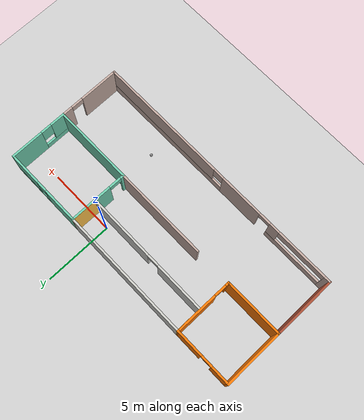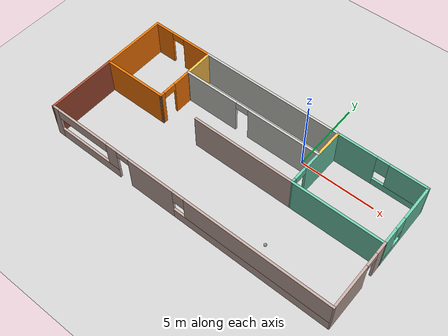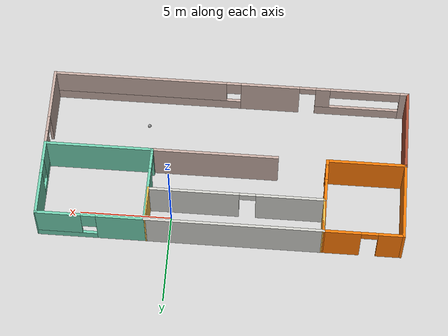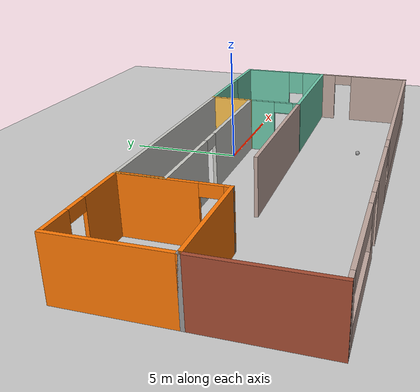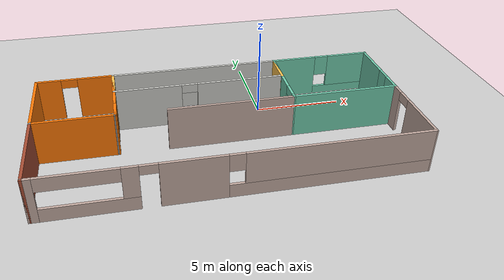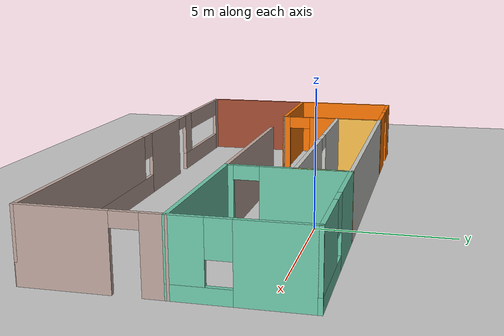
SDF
<sdf version="1.7">
 <world name="default">
  <plugin name="Project1Plugin" filename="libProject1Plugin.so"/>
  <light name="sun" type="directional">
   <pose>0 0 10 0 -0 0</pose>
   <diffuse>0.8 0.8 0.8 1</diffuse>
   <specular>0.2 0.2 0.2 1</specular>
   <attenuation>
    <range>1000</range>
    <constant>0.9</constant>
    <linear>0.01</linear>
    <quadratic>0.001</quadratic>
   </attenuation>
   <direction>-0.5 0.1 -0.9</direction>
   <spot><inner_angle>0</inner_angle><outer_angle>0</outer_angle><falloff>0</falloff></spot>
  </light>
  <model name="ground_plane">
   <static>1</static>
   <link name="link">
    <collision name="collision">
     <geometry><plane><normal>0 0 1</normal><size>100 100</size></plane></geometry>
     <surface>
      <contact><collide_bitmask>65535</collide_bitmask></contact>
      <friction><ode><mu>100</mu><mu2>50</mu2></ode></friction>
     </surface>
    </collision>
    <visual name="visual">
     <cast_shadows>0</cast_shadows>
     <geometry><plane><normal>0 0 1</normal><size>100 100</size></plane></geometry>
     <material>
      <script><uri>file://media/materials/scripts/gazebo.material</uri><name>Gazebo/Grey</name></script>
     </material>
    </visual>
   </link>
  </model>
  <gravity>0 0 -9.8</gravity>
  <magnetic_field>6e-06 2.3e-05 -4.2e-05</magnetic_field>
  <atmosphere type="adiabatic"/>
  <physics type="ode">
   <max_step_size>0.001</max_step_size>
   <real_time_factor>1</real_time_factor>
   <real_time_update_rate>1000</real_time_update_rate>
  </physics>
  <scene><ambient>0.4 0.4 0.4 1</ambient><background>0.7 0.7 0.7 1</background><shadows>1</shadows></scene>
  <spherical_coordinates>
   <surface_model>EARTH_WGS84</surface_model>
   <latitude_deg>0</latitude_deg>
   <longitude_deg>0</longitude_deg>
   <elevation>0</elevation>
   <heading_deg>0</heading_deg>
  </spherical_coordinates>
  <model name="House">
   <pose>-2.75299 -2.99954 0 0 -0 0</pose>
   <link name="Wall_0">
    <pose>-0.000507 -4.41346 0 0 -0 0</pose>
    <visual name="Wall_0_Visual_0">
     <pose>-9.69615 0 1.25 0 -0 0</pose>
     <geometry><box><size>0.510706 0.15 2.5</size></box></geometry>
     <material>
      <script><uri>file://media/materials/scripts/gazebo.material</uri><name>Gazebo/Grey</name></script>
      <ambient>0.760784 0.662745 0.627451 1</ambient>
     </material>
     <meta><layer>0</layer></meta>
    </visual>
    <collision name="Wall_0_Collision_0">
     <geometry><box><size>0.510706 0.15 2.5</size></box></geometry>
     <pose>-9.69615 0 1.25 0 -0 0</pose>
    </collision>
    <visual name="Wall_0_Visual_1">
     <pose>-2.21069 0 1.25 0 -0 0</pose>
     <geometry><box><size>3.28211 0.15 2.5</size></box></geometry>
     <material>
      <script><uri>file://media/materials/scripts/gazebo.material</uri><name>Gazebo/Grey</name></script>
      <ambient>0.760784 0.662745 0.627451 1</ambient>
     </material>
     <meta><layer>0</layer></meta>
    </visual>
    <collision name="Wall_0_Collision_1">
     <geometry><box><size>3.28211 0.15 2.5</size></box></geometry>
     <pose>-2.21069 0 1.25 0 -0 0</pose>
    </collision>
    <visual name="Wall_0_Visual_2">
     <pose>-7.09627 0 0.375 0 -0 0</pose>
     <geometry><box><size>4.68905 0.15 0.75</size></box></geometry>
     <material>
      <script><uri>file://media/materials/scripts/gazebo.material</uri><name>Gazebo/Grey</name></script>
      <ambient>0.760784 0.662745 0.627451 1</ambient>
     </material>
     <meta><layer>0</layer></meta>
    </visual>
    <collision name="Wall_0_Collision_2">
     <geometry><box><size>4.68905 0.15 0.75</size></box></geometry>
     <pose>-7.09627 0 0.375 0 -0 0</pose>
    </collision>
    <visual name="Wall_0_Visual_3">
     <pose>4.69093 0 0.375 0 -0 0</pose>
     <geometry><box><size>10.5211 0.15 0.75</size></box></geometry>
     <material>
      <script><uri>file://media/materials/scripts/gazebo.material</uri><name>Gazebo/Grey</name></script>
      <ambient>0.760784 0.662745 0.627451 1</ambient>
     </material>
     <meta><layer>0</layer></meta>
    </visual>
    <collision name="Wall_0_Collision_3">
     <geometry><box><size>10.5211 0.15 0.75</size></box></geometry>
     <pose>4.69093 0 0.375 0 -0 0</pose>
    </collision>
    <visual name="Wall_0_Visual_4">
     <pose>-5.15627 0 1.625 0 -0 0</pose>
     <geometry><box><size>0.809051 0.15 1.75</size></box></geometry>
     <material>
      <script><uri>file://media/materials/scripts/gazebo.material</uri><name>Gazebo/Grey</name></script>
      <ambient>0.760784 0.662745 0.627451 1</ambient>
     </material>
     <meta><layer>0</layer></meta>
    </visual>
    <collision name="Wall_0_Collision_4">
     <geometry><box><size>0.809051 0.15 1.75</size></box></geometry>
     <pose>-5.15627 0 1.625 0 -0 0</pose>
    </collision>
    <visual name="Wall_0_Visual_5">
     <pose>-5.15627 0 1.625 0 -0 0</pose>
     <geometry><box><size>0.809051 0.15 1.75</size></box></geometry>
     <material>
      <script><uri>file://media/materials/scripts/gazebo.material</uri><name>Gazebo/Grey</name></script>
      <ambient>0.760784 0.662745 0.627451 1</ambient>
     </material>
     <meta><layer>0</layer></meta>
    </visual>
    <collision name="Wall_0_Collision_5">
     <geometry><box><size>0.809051 0.15 1.75</size></box></geometry>
     <pose>-5.15627 0 1.625 0 -0 0</pose>
    </collision>
    <visual name="Wall_0_Visual_6">
     <pose>5.09093 0 1.625 0 -0 0</pose>
     <geometry><box><size>9.72114 0.15 1.75</size></box></geometry>
     <material>
      <script><uri>file://media/materials/scripts/gazebo.material</uri><name>Gazebo/Grey</name></script>
      <ambient>0.760784 0.662745 0.627451 1</ambient>
     </material>
     <meta><layer>0</layer></meta>
    </visual>
    <collision name="Wall_0_Collision_6">
     <geometry><box><size>9.72114 0.15 1.75</size></box></geometry>
     <pose>5.09093 0 1.625 0 -0 0</pose>
    </collision>
    <visual name="Wall_0_Visual_7">
     <pose>-0.169637 0 2.025 0 -0 0</pose>
     <geometry><box><size>0.8 0.15 0.95</size></box></geometry>
     <material>
      <script><uri>file://media/materials/scripts/gazebo.material</uri><name>Gazebo/Grey</name></script>
      <ambient>0.760784 0.662745 0.627451 1</ambient>
     </material>
     <meta><layer>0</layer></meta>
    </visual>
    <collision name="Wall_0_Collision_7">
     <geometry><box><size>0.8 0.15 0.95</size></box></geometry>
     <pose>-0.169637 0 2.025 0 -0 0</pose>
    </collision>
    <visual name="Wall_0_Visual_8">
     <pose>-7.50079 0 2.125 0 -0 0</pose>
     <geometry><box><size>3.88 0.15 0.75</size></box></geometry>
     <material>
      <script><uri>file://media/materials/scripts/gazebo.material</uri><name>Gazebo/Grey</name></script>
      <ambient>0.760784 0.662745 0.627451 1</ambient>
     </material>
     <meta><layer>0</layer></meta>
    </visual>
    <collision name="Wall_0_Collision_8">
     <geometry><box><size>3.88 0.15 0.75</size></box></geometry>
     <pose>-7.50079 0 2.125 0 -0 0</pose>
    </collision>
    <visual name="Wall_0_Visual_9">
     <pose>-4.30174 0 2.25 0 -0 0</pose>
     <geometry><box><size>0.9 0.15 0.5</size></box></geometry>
     <material>
      <script><uri>file://media/materials/scripts/gazebo.material</uri><name>Gazebo/Grey</name></script>
      <ambient>0.760784 0.662745 0.627451 1</ambient>
     </material>
     <meta><layer>0</layer></meta>
    </visual>
    <collision name="Wall_0_Collision_9">
     <geometry><box><size>0.9 0.15 0.5</size></box></geometry>
     <pose>-4.30174 0 2.25 0 -0 0</pose>
    </collision>
    <visual name="Wall_0_Visual_10">
     <pose>-4.30174 0 2.25 0 -0 0</pose>
     <geometry><box><size>0.9 0.15 0.5</size></box></geometry>
     <material>
      <script><uri>file://media/materials/scripts/gazebo.material</uri><name>Gazebo/Grey</name></script>
      <ambient>0.760784 0.662745 0.627451 1</ambient>
     </material>
     <meta><layer>0</layer></meta>
    </visual>
    <collision name="Wall_0_Collision_10">
     <geometry><box><size>0.9 0.15 0.5</size></box></geometry>
     <pose>-4.30174 0 2.25 0 -0 0</pose>
    </collision>
   </link>
   <link name="Wall_15">
    <pose>4.00635 2.27068 0 0 -0 -1.58026</pose>
    <visual name="Wall_15_Visual_0">
     <pose>-0.624236 0 1.25 0 -0 0</pose>
     <geometry><box><size>3.18582 0.15 2.5</size></box></geometry>
     <material>
      <script><uri>file://media/materials/scripts/gazebo.material</uri><name>Gazebo/Grey</name></script>
      <ambient>0.435294 0.796078 0.67451 1</ambient>
     </material>
     <meta><layer>0</layer></meta>
    </visual>
    <collision name="Wall_15_Collision_0">
     <geometry><box><size>3.18582 0.15 2.5</size></box></geometry>
     <pose>-0.624236 0 1.25 0 -0 0</pose>
    </collision>
    <visual name="Wall_15_Visual_1">
     <pose>2.04291 0 1.25 0 -0 0</pose>
     <geometry><box><size>0.348472 0.15 2.5</size></box></geometry>
     <material>
      <script><uri>file://media/materials/scripts/gazebo.material</uri><name>Gazebo/Grey</name></script>
      <ambient>0.435294 0.796078 0.67451 1</ambient>
     </material>
     <meta><layer>0</layer></meta>
    </visual>
    <collision name="Wall_15_Collision_1">
     <geometry><box><size>0.348472 0.15 2.5</size></box></geometry>
     <pose>2.04291 0 1.25 0 -0 0</pose>
    </collision>
    <visual name="Wall_15_Visual_2">
     <pose>1.41868 0 2.25 0 -0 0</pose>
     <geometry><box><size>0.9 0.15 0.5</size></box></geometry>
     <material>
      <script><uri>file://media/materials/scripts/gazebo.material</uri><name>Gazebo/Grey</name></script>
      <ambient>0.435294 0.796078 0.67451 1</ambient>
     </material>
     <meta><layer>0</layer></meta>
    </visual>
    <collision name="Wall_15_Collision_2">
     <geometry><box><size>0.9 0.15 0.5</size></box></geometry>
     <pose>1.41868 0 2.25 0 -0 0</pose>
    </collision>
   </link>
   <link name="Wall_24">
    <pose>6.95163 4.41273 0 0 -0 0</pose>
    <visual name="Wall_24_Visual_0">
     <pose>-1.65532 0 1.25 0 -0 0</pose>
     <geometry><box><size>2.68935 0.15 2.5</size></box></geometry>
     <material>
      <script><uri>file://media/materials/scripts/gazebo.material</uri><name>Gazebo/Grey</name></script>
      <ambient>0.435294 0.796078 0.67451 1</ambient>
     </material>
     <meta><layer>0</layer></meta>
    </visual>
    <collision name="Wall_24_Collision_0">
     <geometry><box><size>2.68935 0.15 2.5</size></box></geometry>
     <pose>-1.65532 0 1.25 0 -0 0</pose>
    </collision>
    <visual name="Wall_24_Visual_1">
     <pose>1.34468 0 0.25 0 -0 0</pose>
     <geometry><box><size>3.31065 0.15 0.5</size></box></geometry>
     <material>
      <script><uri>file://media/materials/scripts/gazebo.material</uri><name>Gazebo/Grey</name></script>
      <ambient>0.435294 0.796078 0.67451 1</ambient>
     </material>
     <meta><layer>0</layer></meta>
    </visual>
    <collision name="Wall_24_Collision_1">
     <geometry><box><size>3.31065 0.15 0.5</size></box></geometry>
     <pose>1.34468 0 0.25 0 -0 0</pose>
    </collision>
    <visual name="Wall_24_Visual_2">
     <pose>1.74468 0 1.5 0 -0 0</pose>
     <geometry><box><size>2.51064 0.15 2</size></box></geometry>
     <material>
      <script><uri>file://media/materials/scripts/gazebo.material</uri><name>Gazebo/Grey</name></script>
      <ambient>0.435294 0.796078 0.67451 1</ambient>
     </material>
     <meta><layer>0</layer></meta>
    </visual>
    <collision name="Wall_24_Collision_2">
     <geometry><box><size>2.51064 0.15 2</size></box></geometry>
     <pose>1.74468 0 1.5 0 -0 0</pose>
    </collision>
    <visual name="Wall_24_Visual_3">
     <pose>0.089355 0 1.9 0 -0 0</pose>
     <geometry><box><size>0.8 0.15 1.2</size></box></geometry>
     <material>
      <script><uri>file://media/materials/scripts/gazebo.material</uri><name>Gazebo/Grey</name></script>
      <ambient>0.435294 0.796078 0.67451 1</ambient>
     </material>
     <meta><layer>0</layer></meta>
    </visual>
    <collision name="Wall_24_Collision_3">
     <geometry><box><size>0.8 0.15 1.2</size></box></geometry>
     <pose>0.089355 0 1.9 0 -0 0</pose>
    </collision>
   </link>
   <link name="Wall_25">
    <pose>9.87681 2.27063 0 0 -0 -1.57071</pose>
    <visual name="Wall_25_Visual_0">
     <pose>-0.987582 0 1.25 0 -0 0</pose>
     <geometry><box><size>2.45903 0.15 2.5</size></box></geometry>
     <material>
      <script><uri>file://media/materials/scripts/gazebo.material</uri><name>Gazebo/Grey</name></script>
      <ambient>0.435294 0.796078 0.67451 1</ambient>
     </material>
     <meta><layer>0</layer></meta>
    </visual>
    <collision name="Wall_25_Collision_0">
     <geometry><box><size>2.45903 0.15 2.5</size></box></geometry>
     <pose>-0.987582 0 1.25 0 -0 0</pose>
    </collision>
    <visual name="Wall_25_Visual_1">
     <pose>1.22951 0 0.25 0 -0 0</pose>
     <geometry><box><size>1.97516 0.15 0.5</size></box></geometry>
     <material>
      <script><uri>file://media/materials/scripts/gazebo.material</uri><name>Gazebo/Grey</name></script>
      <ambient>0.435294 0.796078 0.67451 1</ambient>
     </material>
     <meta><layer>0</layer></meta>
    </visual>
    <collision name="Wall_25_Collision_1">
     <geometry><box><size>1.97516 0.15 0.5</size></box></geometry>
     <pose>1.22951 0 0.25 0 -0 0</pose>
    </collision>
    <visual name="Wall_25_Visual_2">
     <pose>1.62951 0 1.5 0 -0 0</pose>
     <geometry><box><size>1.17516 0.15 2</size></box></geometry>
     <material>
      <script><uri>file://media/materials/scripts/gazebo.material</uri><name>Gazebo/Grey</name></script>
      <ambient>0.435294 0.796078 0.67451 1</ambient>
     </material>
     <meta><layer>0</layer></meta>
    </visual>
    <collision name="Wall_25_Collision_2">
     <geometry><box><size>1.17516 0.15 2</size></box></geometry>
     <pose>1.62951 0 1.5 0 -0 0</pose>
    </collision>
    <visual name="Wall_25_Visual_3">
     <pose>0.641932 0 1.9 0 -0 0</pose>
     <geometry><box><size>0.8 0.15 1.2</size></box></geometry>
     <material>
      <script><uri>file://media/materials/scripts/gazebo.material</uri><name>Gazebo/Grey</name></script>
      <ambient>0.435294 0.796078 0.67451 1</ambient>
     </material>
     <meta><layer>0</layer></meta>
    </visual>
    <collision name="Wall_25_Collision_3">
     <geometry><box><size>0.8 0.15 1.2</size></box></geometry>
     <pose>0.641932 0 1.9 0 -0 0</pose>
    </collision>
   </link>
   <link name="Wall_26">
    <collision name="Wall_26_Collision">
     <geometry><box><size>6.04056 0.15 2.5</size></box></geometry>
     <pose>0 0 1.25 0 -0 0</pose>
    </collision>
    <visual name="Wall_26_Visual">
     <pose>0 0 1.25 0 -0 0</pose>
     <geometry><box><size>6.04056 0.15 2.5</size></box></geometry>
     <material>
      <script><uri>file://media/materials/scripts/gazebo.material</uri><name>Gazebo/Grey</name></script>
      <ambient>0.435294 0.796078 0.67451 1</ambient>
     </material>
     <meta><layer>0</layer></meta>
    </visual>
    <pose>6.93153 0.12858 0 0 -0 3.14158</pose>
   </link>
   <link name="Wall_29">
    <pose>-7.73551 4.41254 0 0 -0 3.14159</pose>
    <visual name="Wall_29_Visual_0">
     <pose>-1.16782 0 1.25 0 -0 0</pose>
     <geometry><box><size>2.09737 0.15 2.5</size></box></geometry>
     <material>
      <script><uri>file://media/materials/scripts/gazebo.material</uri><name>Gazebo/Grey</name></script>
      <ambient>0.996078 0.47451 0.0196078 1</ambient>
     </material>
     <meta><layer>0</layer></meta>
    </visual>
    <collision name="Wall_29_Collision_0">
     <geometry><box><size>2.09737 0.15 2.5</size></box></geometry>
     <pose>-1.16782 0 1.25 0 -0 0</pose>
    </collision>
    <visual name="Wall_29_Visual_1">
     <pose>1.49869 0 1.25 0 -0 0</pose>
     <geometry><box><size>1.43563 0.15 2.5</size></box></geometry>
     <material>
      <script><uri>file://media/materials/scripts/gazebo.material</uri><name>Gazebo/Grey</name></script>
      <ambient>0.996078 0.47451 0.0196078 1</ambient>
     </material>
     <meta><layer>0</layer></meta>
    </visual>
    <collision name="Wall_29_Collision_1">
     <geometry><box><size>1.43563 0.15 2.5</size></box></geometry>
     <pose>1.49869 0 1.25 0 -0 0</pose>
    </collision>
    <visual name="Wall_29_Visual_2">
     <pose>0.330871 0 2.25 0 -0 0</pose>
     <geometry><box><size>0.9 0.15 0.5</size></box></geometry>
     <material>
      <script><uri>file://media/materials/scripts/gazebo.material</uri><name>Gazebo/Grey</name></script>
      <ambient>0.996078 0.47451 0.0196078 1</ambient>
     </material>
     <meta><layer>0</layer></meta>
    </visual>
    <collision name="Wall_29_Collision_2">
     <geometry><box><size>0.9 0.15 0.5</size></box></geometry>
     <pose>0.330871 0 2.25 0 -0 0</pose>
    </collision>
   </link>
   <link name="Wall_36">
    <collision name="Wall_36_Collision">
     <geometry><box><size>0.15 0.15 2.5</size></box></geometry>
     <pose>0 0 1.25 0 -0 0</pose>
    </collision>
    <visual name="Wall_36_Visual">
     <pose>0 0 1.25 0 -0 0</pose>
     <geometry><box><size>0.15 0.15 2.5</size></box></geometry>
     <material>
      <script><uri>file://media/materials/scripts/gazebo.material</uri><name>Gazebo/Grey</name></script>
      <ambient>1 1 1 1</ambient>
     </material>
     <meta><layer>0</layer></meta>
    </visual>
    <pose>-5.61393 0.128624 0 0 -0 0</pose>
   </link>
   <link name="Wall_37">
    <collision name="Wall_37_Collision">
     <geometry><box><size>4.41308 0.15 2.5</size></box></geometry>
     <pose>0 0 1.25 0 -0 0</pose>
    </collision>
    <visual name="Wall_37_Visual">
     <pose>0 0 1.25 0 -0 0</pose>
     <geometry><box><size>4.41308 0.15 2.5</size></box></geometry>
     <material>
      <script><uri>file://media/materials/scripts/gazebo.material</uri><name>Gazebo/Grey</name></script>
      <ambient>0.996078 0.47451 0.0196078 1</ambient>
     </material>
     <meta><layer>0</layer></meta>
    </visual>
    <pose>-7.74547 0.12858 0 0 -0 -3.14157</pose>
   </link>
   <link name="Wall_38">
    <collision name="Wall_38_Collision">
     <geometry><box><size>0.15 0.15 2.5</size></box></geometry>
     <pose>0 0 1.25 0 -0 0</pose>
    </collision>
    <visual name="Wall_38_Visual">
     <pose>0 0 1.25 0 -0 0</pose>
     <geometry><box><size>0.15 0.15 2.5</size></box></geometry>
     <material>
      <script><uri>file://media/materials/scripts/gazebo.material</uri><name>Gazebo/Grey</name></script>
      <ambient>1 1 1 1</ambient>
     </material>
     <meta><layer>0</layer></meta>
    </visual>
    <pose>-9.87701 0.128537 0 0 -0 0</pose>
   </link>
   <link name="Wall_39">
    <collision name="Wall_39_Collision">
     <geometry><box><size>4.43416 0.15 2.5</size></box></geometry>
     <pose>0 0 1.25 0 -0 0</pose>
    </collision>
    <visual name="Wall_39_Visual">
     <pose>0 0 1.25 0 -0 0</pose>
     <geometry><box><size>4.43416 0.15 2.5</size></box></geometry>
     <material>
      <script><uri>file://media/materials/scripts/gazebo.material</uri><name>Gazebo/Grey</name></script>
      <ambient>0.996078 0.47451 0.0196078 1</ambient>
     </material>
     <meta><layer>0</layer></meta>
    </visual>
    <pose>-9.87701 2.27054 0 0 -0 1.5708</pose>
   </link>
   <link name="Wall_41">
    <pose>-5.60397 2.27058 0 0 -0 -1.57545</pose>
    <visual name="Wall_41_Visual_0">
     <pose>-0.617155 0 1.25 0 -0 0</pose>
     <geometry><box><size>3.19965 0.15 2.5</size></box></geometry>
     <material>
      <script><uri>file://media/materials/scripts/gazebo.material</uri><name>Gazebo/Grey</name></script>
      <ambient>0.996078 0.47451 0.0196078 1</ambient>
     </material>
     <meta><layer>0</layer></meta>
    </visual>
    <collision name="Wall_41_Collision_0">
     <geometry><box><size>3.19965 0.15 2.5</size></box></geometry>
     <pose>-0.617155 0 1.25 0 -0 0</pose>
    </collision>
    <visual name="Wall_41_Visual_1">
     <pose>2.04982 0 1.25 0 -0 0</pose>
     <geometry><box><size>0.334309 0.15 2.5</size></box></geometry>
     <material>
      <script><uri>file://media/materials/scripts/gazebo.material</uri><name>Gazebo/Grey</name></script>
      <ambient>0.996078 0.47451 0.0196078 1</ambient>
     </material>
     <meta><layer>0</layer></meta>
    </visual>
    <collision name="Wall_41_Collision_1">
     <geometry><box><size>0.334309 0.15 2.5</size></box></geometry>
     <pose>2.04982 0 1.25 0 -0 0</pose>
    </collision>
    <visual name="Wall_41_Visual_2">
     <pose>1.43267 0 2.25 0 -0 0</pose>
     <geometry><box><size>0.9 0.15 0.5</size></box></geometry>
     <material>
      <script><uri>file://media/materials/scripts/gazebo.material</uri><name>Gazebo/Grey</name></script>
      <ambient>0.996078 0.47451 0.0196078 1</ambient>
     </material>
     <meta><layer>0</layer></meta>
    </visual>
    <collision name="Wall_41_Collision_2">
     <geometry><box><size>0.9 0.15 0.5</size></box></geometry>
     <pose>1.43267 0 2.25 0 -0 0</pose>
    </collision>
   </link>
   <link name="Wall_43">
    <collision name="Wall_43_Collision">
     <geometry><box><size>9.77063 0.15 2.5</size></box></geometry>
     <pose>0 0 1.25 0 -0 0</pose>
    </collision>
    <visual name="Wall_43_Visual">
     <pose>0 0 1.25 0 -0 0</pose>
     <geometry><box><size>9.77063 0.15 2.5</size></box></geometry>
     <material>
      <script><uri>file://media/materials/scripts/gazebo.material</uri><name>Gazebo/CeilingTiled</name></script>
      <ambient>1 0.764706 0.305882 1</ambient>
     </material>
     <meta><layer>0</layer></meta>
    </visual>
    <pose>-0.783691 4.41263 0 0 -0 2e-05</pose>
   </link>
   <link name="Wall_45">
    <pose>-0.792421 2.54123 0 0 -0 0</pose>
    <visual name="Wall_45_Visual_0">
     <pose>-2.96369 0 1.25 0 -0 0</pose>
     <geometry><box><size>3.82261 0.15 2.5</size></box></geometry>
     <material>
      <script><uri>file://media/materials/scripts/gazebo.material</uri><name>Gazebo/CeilingTiled</name></script>
      <ambient>1 0.764706 0.305882 1</ambient>
     </material>
     <meta><layer>0</layer></meta>
    </visual>
    <collision name="Wall_45_Collision_0">
     <geometry><box><size>3.82261 0.15 2.5</size></box></geometry>
     <pose>-2.96369 0 1.25 0 -0 0</pose>
    </collision>
    <visual name="Wall_45_Visual_1">
     <pose>2.36131 0 1.25 0 -0 0</pose>
     <geometry><box><size>5.02738 0.15 2.5</size></box></geometry>
     <material>
      <script><uri>file://media/materials/scripts/gazebo.material</uri><name>Gazebo/CeilingTiled</name></script>
      <ambient>1 0.764706 0.305882 1</ambient>
     </material>
     <meta><layer>0</layer></meta>
    </visual>
    <collision name="Wall_45_Collision_1">
     <geometry><box><size>5.02738 0.15 2.5</size></box></geometry>
     <pose>2.36131 0 1.25 0 -0 0</pose>
    </collision>
    <visual name="Wall_45_Visual_2">
     <pose>-0.602385 0 2.25 0 -0 0</pose>
     <geometry><box><size>0.9 0.15 0.5</size></box></geometry>
     <material>
      <script><uri>file://media/materials/scripts/gazebo.material</uri><name>Gazebo/CeilingTiled</name></script>
      <ambient>1 0.764706 0.305882 1</ambient>
     </material>
     <meta><layer>0</layer></meta>
    </visual>
    <collision name="Wall_45_Collision_2">
     <geometry><box><size>0.9 0.15 0.5</size></box></geometry>
     <pose>-0.602385 0 2.25 0 -0 0</pose>
    </collision>
   </link>
   <link name="Wall_46">
    <collision name="Wall_46_Collision">
     <geometry><box><size>2.04187 0.15 2.5</size></box></geometry>
     <pose>0 0 1.25 0 -0 0</pose>
    </collision>
    <visual name="Wall_46_Visual">
     <pose>0 0 1.25 0 -0 0</pose>
     <geometry><box><size>2.04187 0.15 2.5</size></box></geometry>
     <material>
      <script><uri>file://media/materials/scripts/gazebo.material</uri><name>Gazebo/Grey</name></script>
      <ambient>1 0.764706 0.305882 1</ambient>
     </material>
     <meta><layer>0</layer></meta>
    </visual>
    <pose>4.0171 3.46684 0 0 -0 1.56073</pose>
   </link>
   <link name="Wall_48">
    <collision name="Wall_48_Collision">
     <geometry><box><size>2.04158 0.15 2.5</size></box></geometry>
     <pose>0 0 1.25 0 -0 0</pose>
    </collision>
    <visual name="Wall_48_Visual">
     <pose>0 0 1.25 0 -0 0</pose>
     <geometry><box><size>2.04158 0.15 2.5</size></box></geometry>
     <material>
      <script><uri>file://media/materials/scripts/gazebo.material</uri><name>Gazebo/Grey</name></script>
      <ambient>1 0.764706 0.305882 1</ambient>
     </material>
     <meta><layer>0</layer></meta>
    </visual>
    <pose>-5.59321 3.46674 0 0 -0 1.57163</pose>
   </link>
   <link name="Wall_52">
    <collision name="Wall_52_Collision">
     <geometry><box><size>7 0.15 2.5</size></box></geometry>
     <pose>0 0 1.25 0 -0 0</pose>
    </collision>
    <visual name="Wall_52_Visual">
     <pose>0 0 1.25 0 -0 0</pose>
     <geometry><box><size>7 0.15 2.5</size></box></geometry>
     <material>
      <script><uri>file://media/materials/scripts/gazebo.material</uri><name>Gazebo/Grey</name></script>
      <ambient>0.760784 0.662745 0.627451 1</ambient>
     </material>
     <meta><layer>0</layer></meta>
    </visual>
    <pose>0.561069 0.128624 0 0 -0 3.14159</pose>
   </link>
   <link name="Wall_54">
    <collision name="Wall_54_Collision">
     <geometry><box><size>4.692 0.15 2.5</size></box></geometry>
     <pose>0 0 1.25 0 -0 0</pose>
    </collision>
    <visual name="Wall_54_Visual">
     <pose>0 0 1.25 0 -0 0</pose>
     <geometry><box><size>4.692 0.15 2.5</size></box></geometry>
     <material>
      <script><uri>file://media/materials/scripts/gazebo.material</uri><name>Gazebo/Bricks</name></script>
      <ambient>0.760784 0.662745 0.627451 1</ambient>
     </material>
     <meta><layer>0</layer></meta>
    </visual>
    <pose>-9.87701 -2.14246 0 0 -0 -1.5708</pose>
   </link>
   <link name="Wall_56">
    <pose>9.87649 -2.14246 0 0 -0 -1.57102</pose>
    <visual name="Wall_56_Visual_0">
     <pose>-1.93505 0 1.25 0 -0 0</pose>
     <geometry><box><size>0.821891 0.15 2.5</size></box></geometry>
     <material>
      <script><uri>file://media/materials/scripts/gazebo.material</uri><name>Gazebo/Grey</name></script>
      <ambient>0.760784 0.662745 0.627451 1</ambient>
     </material>
     <meta><layer>0</layer></meta>
    </visual>
    <collision name="Wall_56_Collision_0">
     <geometry><box><size>0.821891 0.15 2.5</size></box></geometry>
     <pose>-1.93505 0 1.25 0 -0 0</pose>
    </collision>
    <visual name="Wall_56_Visual_1">
     <pose>0.860945 0 1.25 0 -0 0</pose>
     <geometry><box><size>2.97011 0.15 2.5</size></box></geometry>
     <material>
      <script><uri>file://media/materials/scripts/gazebo.material</uri><name>Gazebo/Grey</name></script>
      <ambient>0.760784 0.662745 0.627451 1</ambient>
     </material>
     <meta><layer>0</layer></meta>
    </visual>
    <collision name="Wall_56_Collision_1">
     <geometry><box><size>2.97011 0.15 2.5</size></box></geometry>
     <pose>0.860945 0 1.25 0 -0 0</pose>
    </collision>
    <visual name="Wall_56_Visual_2">
     <pose>-1.07411 0 2.25 0 -0 0</pose>
     <geometry><box><size>0.9 0.15 0.5</size></box></geometry>
     <material>
      <script><uri>file://media/materials/scripts/gazebo.material</uri><name>Gazebo/Grey</name></script>
      <ambient>0.760784 0.662745 0.627451 1</ambient>
     </material>
     <meta><layer>0</layer></meta>
    </visual>
    <collision name="Wall_56_Collision_2">
     <geometry><box><size>0.9 0.15 0.5</size></box></geometry>
     <pose>-1.07411 0 2.25 0 -0 0</pose>
    </collision>
   </link>
   <static>1</static>
  </model>
  <model name="my_ball">
   <link name="link_0">
    <inertial>
     <mass>1</mass>
     <inertia><ixx>0.1</ixx><ixy>0</ixy><ixz>0</ixz><iyy>0.1</iyy><iyz>0</iyz><izz>0.1</izz></inertia>
    </inertial>
    <pose>0.238746 -0.250289 0.5 0 -0 0</pose>
    <visual name="visual">
     <geometry><sphere><radius>0.1</radius></sphere></geometry>
     <material>
      <lighting>1</lighting>
      <script><uri>file://media/materials/scripts/gazebo.material</uri><name>Gazebo/Grey</name></script>
      <shader type="pixel"><normal_map>__default__</normal_map></shader>
      <ambient>1 1 1 1</ambient>
      <diffuse>1 1 1 1</diffuse>
      <specular>1 1 1 1</specular>
      <emissive>1 1 1 1</emissive>
     </material>
    </visual>
    <collision name="collision">
     <geometry><sphere><radius>0.1</radius></sphere></geometry>
     <surface>
      <friction>
       <ode><mu>1</mu><mu2>1</mu2><fdir1>0 0 0</fdir1><slip1>0</slip1><slip2>0</slip2></ode>
       <torsional>
        <coefficient>1</coefficient>
        <patch_radius>0</patch_radius>
        <surface_radius>0</surface_radius>
        <use_patch_radius>1</use_patch_radius>
        <ode><slip>0</slip></ode>
       </torsional>
      </friction>
      <bounce><restitution_coefficient>0</restitution_coefficient><threshold>1e+06</threshold></bounce>
      <contact>
       <collide_without_contact>0</collide_without_contact>
       <collide_without_contact_bitmask>1</collide_without_contact_bitmask>
       <collide_bitmask>1</collide_bitmask>
       <ode>
        <soft_cfm>0</soft_cfm>
        <soft_erp>0.2</soft_erp>
        <kp>1e+13</kp>
        <kd>1</kd>
        <max_vel>0.01</max_vel>
        <min_depth>0</min_depth>
       </ode>
       <bullet>
        <split_impulse>1</split_impulse>
        <split_impulse_penetration_threshold>-0.01</split_impulse_penetration_threshold>
        <soft_cfm>0</soft_cfm>
        <soft_erp>0.2</soft_erp>
        <kp>1e+13</kp>
        <kd>1</kd>
       </bullet>
      </contact>
     </surface>
    </collision>
   </link>
   <static>0</static>
   <pose>1.50455 -5.48114 -0.4 0 -0 0</pose>
  </model>
 </world>
</sdf>
